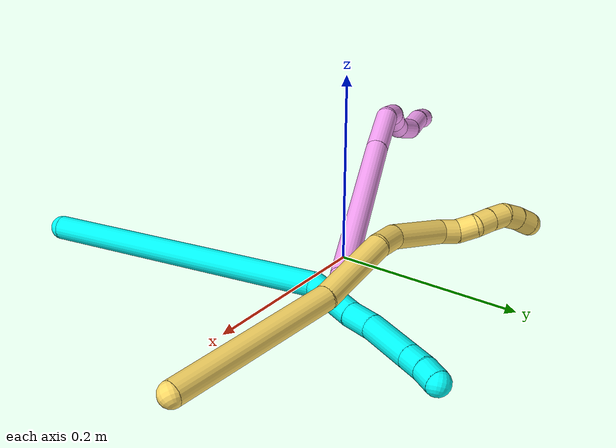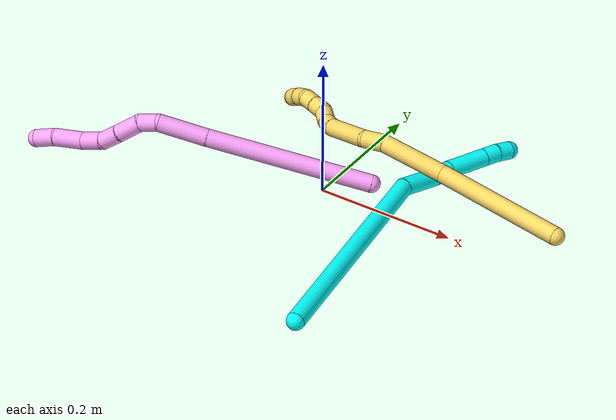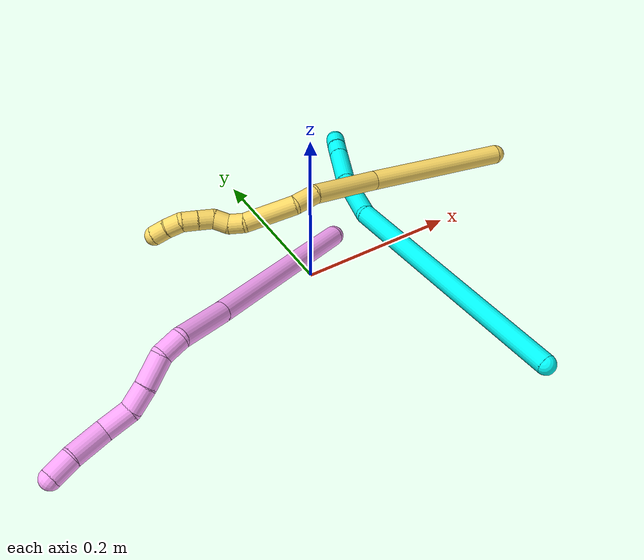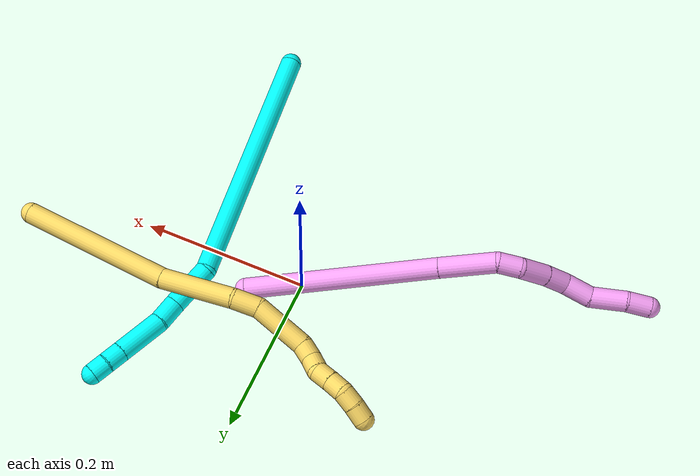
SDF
<sdf version="1.7">
 <world name="default">
  <model name="3">
   <static>0</static>
   <link name="3">
    <collision name="collision-cylinder-e_1_1_4">
     <pose>0.044024 0.150426 0.010958 -1.49808 0.283998 -0.264301</pose>
     <geometry><cylinder><radius>0.0125</radius><length>0.314236</length></cylinder></geometry>
     <surface>
      <friction><ode><mu>1.16</mu><mu2>1.16</mu2><slip1>0</slip1><slip2>0</slip2></ode></friction>
      <contact><ode><kp>1e+06</kp><kd>1</kd><max_vel>0</max_vel><min_depth>0.001</min_depth></ode></contact>
     </surface>
    </collision>
    <visual name="visual-cylinder-e_1_1_4">
     <pose>0.044024 0.150426 0.010958 -1.49808 0.283998 -0.264301</pose>
     <geometry><cylinder><radius>0.0125</radius><length>0.314236</length></cylinder></geometry>
     <material><ambient>0.003922 1 0.996078 1</ambient></material>
    </visual>
    <collision name="collision-cylinder-e_2_4_5">
     <pose>0.089512 0.325736 0.034073 -1.11638 0.052827 -0.032992</pose>
     <geometry><cylinder><radius>0.0125</radius><length>0.055469</length></cylinder></geometry>
     <surface>
      <friction><ode><mu>1.16</mu><mu2>1.16</mu2><slip1>0</slip1><slip2>0</slip2></ode></friction>
      <contact><ode><kp>1e+06</kp><kd>1</kd><max_vel>0</max_vel><min_depth>0.001</min_depth></ode></contact>
     </surface>
    </collision>
    <visual name="visual-cylinder-e_2_4_5">
     <pose>0.089512 0.325736 0.034073 -1.11638 0.052827 -0.032992</pose>
     <geometry><cylinder><radius>0.0125</radius><length>0.055469</length></cylinder></geometry>
     <material><ambient>0.003922 1 0.996078 1</ambient></material>
    </visual>
    <collision name="collision-cylinder-e_3_5_6">
     <pose>0.091685 0.364278 0.050867 -1.24347 0.049099 -0.035185</pose>
     <geometry><cylinder><radius>0.0125</radius><length>0.028879</length></cylinder></geometry>
     <surface>
      <friction><ode><mu>1.16</mu><mu2>1.16</mu2><slip1>0</slip1><slip2>0</slip2></ode></friction>
      <contact><ode><kp>1e+06</kp><kd>1</kd><max_vel>0</max_vel><min_depth>0.001</min_depth></ode></contact>
     </surface>
    </collision>
    <visual name="visual-cylinder-e_3_5_6">
     <pose>0.091685 0.364278 0.050867 -1.24347 0.049099 -0.035185</pose>
     <geometry><cylinder><radius>0.0125</radius><length>0.028879</length></cylinder></geometry>
     <material><ambient>0.003922 1 0.996078 1</ambient></material>
    </visual>
    <collision name="collision-cylinder-e_4_6_7">
     <pose>0.088786 0.404669 0.067197 -1.15848 -0.123019 0.080523</pose>
     <geometry><cylinder><radius>0.0125</radius><length>0.058805</length></cylinder></geometry>
     <surface>
      <friction><ode><mu>1.16</mu><mu2>1.16</mu2><slip1>0</slip1><slip2>0</slip2></ode></friction>
      <contact><ode><kp>1e+06</kp><kd>1</kd><max_vel>0</max_vel><min_depth>0.001</min_depth></ode></contact>
     </surface>
    </collision>
    <visual name="visual-cylinder-e_4_6_7">
     <pose>0.088786 0.404669 0.067197 -1.15848 -0.123019 0.080523</pose>
     <geometry><cylinder><radius>0.0125</radius><length>0.058805</length></cylinder></geometry>
     <material><ambient>0.003922 1 0.996078 1</ambient></material>
    </visual>
    <collision name="collision-cylinder-e_5_7_8">
     <pose>0.083814 0.441418 0.08326 -1.15937 -0.124151 0.081344</pose>
     <geometry><cylinder><radius>0.0125</radius><length>0.022021</length></cylinder></geometry>
     <surface>
      <friction><ode><mu>1.16</mu><mu2>1.16</mu2><slip1>0</slip1><slip2>0</slip2></ode></friction>
      <contact><ode><kp>1e+06</kp><kd>1</kd><max_vel>0</max_vel><min_depth>0.001</min_depth></ode></contact>
     </surface>
    </collision>
    <visual name="visual-cylinder-e_5_7_8">
     <pose>0.083814 0.441418 0.08326 -1.15937 -0.124151 0.081344</pose>
     <geometry><cylinder><radius>0.0125</radius><length>0.022021</length></cylinder></geometry>
     <material><ambient>0.003922 1 0.996078 1</ambient></material>
    </visual>
    <collision name="collision-cylinder-e_6_8_2">
     <pose>0.081372 0.460269 0.092799 -1.04147 -0.105033 0.060278</pose>
     <geometry><cylinder><radius>0.0125</radius><length>0.02059</length></cylinder></geometry>
     <surface>
      <friction><ode><mu>1.16</mu><mu2>1.16</mu2><slip1>0</slip1><slip2>0</slip2></ode></friction>
      <contact><ode><kp>1e+06</kp><kd>1</kd><max_vel>0</max_vel><min_depth>0.001</min_depth></ode></contact>
     </surface>
    </collision>
    <visual name="visual-cylinder-e_6_8_2">
     <pose>0.081372 0.460269 0.092799 -1.04147 -0.105033 0.060278</pose>
     <geometry><cylinder><radius>0.0125</radius><length>0.02059</length></cylinder></geometry>
     <material><ambient>0.003922 1 0.996078 1</ambient></material>
    </visual>
    <collision name="collision-sphere-2">
     <pose>0.080292 0.469106 0.097969 0 -0 0</pose>
     <geometry><sphere><radius>0.0125</radius></sphere></geometry>
     <surface>
      <friction><ode><mu>1.16</mu><mu2>1.16</mu2><slip1>0</slip1><slip2>0</slip2></ode></friction>
      <contact><ode><kp>1e+06</kp><kd>1</kd><max_vel>0</max_vel><min_depth>0.001</min_depth></ode></contact>
     </surface>
    </collision>
    <visual name="visual-sphere-2">
     <pose>0.080292 0.469106 0.097969 0 -0 0</pose>
     <geometry><sphere><radius>0.0125</radius></sphere></geometry>
     <material><ambient>0.003922 1 0.996078 1</ambient></material>
    </visual>
    <collision name="collision-sphere-4">
     <pose>0.088047 0.300851 0.021916 0 -0 0</pose>
     <geometry><sphere><radius>0.0125</radius></sphere></geometry>
     <surface>
      <friction><ode><mu>1.16</mu><mu2>1.16</mu2><slip1>0</slip1><slip2>0</slip2></ode></friction>
      <contact><ode><kp>1e+06</kp><kd>1</kd><max_vel>0</max_vel><min_depth>0.001</min_depth></ode></contact>
     </surface>
    </collision>
    <visual name="visual-sphere-4">
     <pose>0.088047 0.300851 0.021916 0 -0 0</pose>
     <geometry><sphere><radius>0.0125</radius></sphere></geometry>
     <material><ambient>0.003922 1 0.996078 1</ambient></material>
    </visual>
    <collision name="collision-sphere-1">
     <geometry><sphere><radius>0.0125</radius></sphere></geometry>
     <surface>
      <friction><ode><mu>1.16</mu><mu2>1.16</mu2><slip1>0</slip1><slip2>0</slip2></ode></friction>
      <contact><ode><kp>1e+06</kp><kd>1</kd><max_vel>0</max_vel><min_depth>0.001</min_depth></ode></contact>
     </surface>
    </collision>
    <visual name="visual-sphere-1">
     <geometry><sphere><radius>0.0125</radius></sphere></geometry>
     <material><ambient>0.003922 1 0.996078 1</ambient></material>
    </visual>
    <collision name="collision-sphere-8">
     <pose>0.082451 0.451432 0.087629 0 -0 0</pose>
     <geometry><sphere><radius>0.0125</radius></sphere></geometry>
     <surface>
      <friction><ode><mu>1.16</mu><mu2>1.16</mu2><slip1>0</slip1><slip2>0</slip2></ode></friction>
      <contact><ode><kp>1e+06</kp><kd>1</kd><max_vel>0</max_vel><min_depth>0.001</min_depth></ode></contact>
     </surface>
    </collision>
    <visual name="visual-sphere-8">
     <pose>0.082451 0.451432 0.087629 0 -0 0</pose>
     <geometry><sphere><radius>0.0125</radius></sphere></geometry>
     <material><ambient>0.003922 1 0.996078 1</ambient></material>
    </visual>
    <collision name="collision-sphere-5">
     <pose>0.090976 0.350621 0.04623 0 -0 0</pose>
     <geometry><sphere><radius>0.0125</radius></sphere></geometry>
     <surface>
      <friction><ode><mu>1.16</mu><mu2>1.16</mu2><slip1>0</slip1><slip2>0</slip2></ode></friction>
      <contact><ode><kp>1e+06</kp><kd>1</kd><max_vel>0</max_vel><min_depth>0.001</min_depth></ode></contact>
     </surface>
    </collision>
    <visual name="visual-sphere-5">
     <pose>0.090976 0.350621 0.04623 0 -0 0</pose>
     <geometry><sphere><radius>0.0125</radius></sphere></geometry>
     <material><ambient>0.003922 1 0.996078 1</ambient></material>
    </visual>
    <collision name="collision-sphere-6">
     <pose>0.092394 0.377934 0.055504 0 -0 0</pose>
     <geometry><sphere><radius>0.0125</radius></sphere></geometry>
     <surface>
      <friction><ode><mu>1.16</mu><mu2>1.16</mu2><slip1>0</slip1><slip2>0</slip2></ode></friction>
      <contact><ode><kp>1e+06</kp><kd>1</kd><max_vel>0</max_vel><min_depth>0.001</min_depth></ode></contact>
     </surface>
    </collision>
    <visual name="visual-sphere-6">
     <pose>0.092394 0.377934 0.055504 0 -0 0</pose>
     <geometry><sphere><radius>0.0125</radius></sphere></geometry>
     <material><ambient>0.003922 1 0.996078 1</ambient></material>
    </visual>
    <collision name="collision-sphere-7">
     <pose>0.085178 0.431404 0.07889 0 -0 0</pose>
     <geometry><sphere><radius>0.0125</radius></sphere></geometry>
     <surface>
      <friction><ode><mu>1.16</mu><mu2>1.16</mu2><slip1>0</slip1><slip2>0</slip2></ode></friction>
      <contact><ode><kp>1e+06</kp><kd>1</kd><max_vel>0</max_vel><min_depth>0.001</min_depth></ode></contact>
     </surface>
    </collision>
    <visual name="visual-sphere-7">
     <pose>0.085178 0.431404 0.07889 0 -0 0</pose>
     <geometry><sphere><radius>0.0125</radius></sphere></geometry>
     <material><ambient>0.003922 1 0.996078 1</ambient></material>
    </visual>
    <inertial>
     <pose>0.060378 0.237703 0.028996 0 -0 0</pose>
     <mass>0.5</mass>
     <inertia>
      <ixx>0.001805</ixx>
      <ixy>0</ixy>
      <ixz>0</ixz>
      <iyy>-0.000224</iyy>
      <iyz>0</iyz>
      <izz>-0.003244</izz>
     </inertia>
    </inertial>
   </link>
   <pose>0.139859 -0.273639 0.012015 2.82579 0.578745 2.87908</pose>
  </model>
  <model name="4">
   <static>0</static>
   <link name="4">
    <collision name="collision-cylinder-e_1_1_4">
     <pose>-0.113635 -0.020309 -0.01254 2.12395 -1.36376 -1.93749</pose>
     <geometry><cylinder><radius>0.0125</radius><length>0.23223</length></cylinder></geometry>
     <surface>
      <friction><ode><mu>1.16</mu><mu2>1.16</mu2><slip1>0</slip1><slip2>0</slip2></ode></friction>
      <contact><ode><kp>1e+06</kp><kd>1</kd><max_vel>0</max_vel><min_depth>0.001</min_depth></ode></contact>
     </surface>
    </collision>
    <visual name="visual-cylinder-e_1_1_4">
     <pose>-0.113635 -0.020309 -0.01254 2.12395 -1.36376 -1.93749</pose>
     <geometry><cylinder><radius>0.0125</radius><length>0.23223</length></cylinder></geometry>
     <material><ambient>1 0.65098 0.996078 1</ambient></material>
    </visual>
    <collision name="collision-cylinder-e_2_4_5">
     <pose>-0.26098 -0.046484 -0.029818 2.25024 -1.35075 -2.06607</pose>
     <geometry><cylinder><radius>0.0125</radius><length>0.069084</length></cylinder></geometry>
     <surface>
      <friction><ode><mu>1.16</mu><mu2>1.16</mu2><slip1>0</slip1><slip2>0</slip2></ode></friction>
      <contact><ode><kp>1e+06</kp><kd>1</kd><max_vel>0</max_vel><min_depth>0.001</min_depth></ode></contact>
     </surface>
    </collision>
    <visual name="visual-cylinder-e_2_4_5">
     <pose>-0.26098 -0.046484 -0.029818 2.25024 -1.35075 -2.06607</pose>
     <geometry><cylinder><radius>0.0125</radius><length>0.069084</length></cylinder></geometry>
     <material><ambient>1 0.65098 0.996078 1</ambient></material>
    </visual>
    <collision name="collision-cylinder-e_3_5_6">
     <pose>-0.305757 -0.060364 -0.035502 1.6883 -0.940772 -1.03916</pose>
     <geometry><cylinder><radius>0.0125</radius><length>0.027397</length></cylinder></geometry>
     <surface>
      <friction><ode><mu>1.16</mu><mu2>1.16</mu2><slip1>0</slip1><slip2>0</slip2></ode></friction>
      <contact><ode><kp>1e+06</kp><kd>1</kd><max_vel>0</max_vel><min_depth>0.001</min_depth></ode></contact>
     </surface>
    </collision>
    <visual name="visual-cylinder-e_3_5_6">
     <pose>-0.305757 -0.060364 -0.035502 1.6883 -0.940772 -1.03916</pose>
     <geometry><cylinder><radius>0.0125</radius><length>0.027397</length></cylinder></geometry>
     <material><ambient>1 0.65098 0.996078 1</ambient></material>
    </visual>
    <collision name="collision-cylinder-e_4_6_7">
     <pose>-0.327809 -0.082191 -0.031922 1.25419 -0.647093 -0.476768</pose>
     <geometry><cylinder><radius>0.0125</radius><length>0.036434</length></cylinder></geometry>
     <surface>
      <friction><ode><mu>1.16</mu><mu2>1.16</mu2><slip1>0</slip1><slip2>0</slip2></ode></friction>
      <contact><ode><kp>1e+06</kp><kd>1</kd><max_vel>0</max_vel><min_depth>0.001</min_depth></ode></contact>
     </surface>
    </collision>
    <visual name="visual-cylinder-e_4_6_7">
     <pose>-0.327809 -0.082191 -0.031922 1.25419 -0.647093 -0.476768</pose>
     <geometry><cylinder><radius>0.0125</radius><length>0.036434</length></cylinder></geometry>
     <material><ambient>1 0.65098 0.996078 1</ambient></material>
    </visual>
    <collision name="collision-cylinder-e_5_7_8">
     <pose>-0.347004 -0.107556 -0.02508 1.37281 -0.608682 -0.503757</pose>
     <geometry><cylinder><radius>0.0125</radius><length>0.028726</length></cylinder></geometry>
     <surface>
      <friction><ode><mu>1.16</mu><mu2>1.16</mu2><slip1>0</slip1><slip2>0</slip2></ode></friction>
      <contact><ode><kp>1e+06</kp><kd>1</kd><max_vel>0</max_vel><min_depth>0.001</min_depth></ode></contact>
     </surface>
    </collision>
    <visual name="visual-cylinder-e_5_7_8">
     <pose>-0.347004 -0.107556 -0.02508 1.37281 -0.608682 -0.503757</pose>
     <geometry><cylinder><radius>0.0125</radius><length>0.028726</length></cylinder></geometry>
     <material><ambient>1 0.65098 0.996078 1</ambient></material>
    </visual>
    <collision name="collision-cylinder-e_6_8_9">
     <pose>-0.366343 -0.131679 -0.026126 1.83232 -0.707462 -0.896816</pose>
     <geometry><cylinder><radius>0.0125</radius><length>0.034242</length></cylinder></geometry>
     <surface>
      <friction><ode><mu>1.16</mu><mu2>1.16</mu2><slip1>0</slip1><slip2>0</slip2></ode></friction>
      <contact><ode><kp>1e+06</kp><kd>1</kd><max_vel>0</max_vel><min_depth>0.001</min_depth></ode></contact>
     </surface>
    </collision>
    <visual name="visual-cylinder-e_6_8_9">
     <pose>-0.366343 -0.131679 -0.026126 1.83232 -0.707462 -0.896816</pose>
     <geometry><cylinder><radius>0.0125</radius><length>0.034242</length></cylinder></geometry>
     <material><ambient>1 0.65098 0.996078 1</ambient></material>
    </visual>
    <collision name="collision-cylinder-e_7_9_10">
     <pose>-0.39671 -0.153834 -0.031798 1.807 -1.09725 -1.3196</pose>
     <geometry><cylinder><radius>0.0125</radius><length>0.043237</length></cylinder></geometry>
     <surface>
      <friction><ode><mu>1.16</mu><mu2>1.16</mu2><slip1>0</slip1><slip2>0</slip2></ode></friction>
      <contact><ode><kp>1e+06</kp><kd>1</kd><max_vel>0</max_vel><min_depth>0.001</min_depth></ode></contact>
     </surface>
    </collision>
    <visual name="visual-cylinder-e_7_9_10">
     <pose>-0.39671 -0.153834 -0.031798 1.807 -1.09725 -1.3196</pose>
     <geometry><cylinder><radius>0.0125</radius><length>0.043237</length></cylinder></geometry>
     <material><ambient>1 0.65098 0.996078 1</ambient></material>
    </visual>
    <collision name="collision-cylinder-e_8_10_2">
     <pose>-0.427196 -0.172281 -0.03453 1.61878 -0.902879 -0.941121</pose>
     <geometry><cylinder><radius>0.0125</radius><length>0.02865</length></cylinder></geometry>
     <surface>
      <friction><ode><mu>1.16</mu><mu2>1.16</mu2><slip1>0</slip1><slip2>0</slip2></ode></friction>
      <contact><ode><kp>1e+06</kp><kd>1</kd><max_vel>0</max_vel><min_depth>0.001</min_depth></ode></contact>
     </surface>
    </collision>
    <visual name="visual-cylinder-e_8_10_2">
     <pose>-0.427196 -0.172281 -0.03453 1.61878 -0.902879 -0.941121</pose>
     <geometry><cylinder><radius>0.0125</radius><length>0.02865</length></cylinder></geometry>
     <material><ambient>1 0.65098 0.996078 1</ambient></material>
    </visual>
    <collision name="collision-sphere-2">
     <pose>-0.438443 -0.181143 -0.034956 0 -0 0</pose>
     <geometry><sphere><radius>0.0125</radius></sphere></geometry>
     <surface>
      <friction><ode><mu>1.16</mu><mu2>1.16</mu2><slip1>0</slip1><slip2>0</slip2></ode></friction>
      <contact><ode><kp>1e+06</kp><kd>1</kd><max_vel>0</max_vel><min_depth>0.001</min_depth></ode></contact>
     </surface>
    </collision>
    <visual name="visual-sphere-2">
     <pose>-0.438443 -0.181143 -0.034956 0 -0 0</pose>
     <geometry><sphere><radius>0.0125</radius></sphere></geometry>
     <material><ambient>1 0.65098 0.996078 1</ambient></material>
    </visual>
    <collision name="collision-sphere-10">
     <pose>-0.415949 -0.16342 -0.034105 0 -0 0</pose>
     <geometry><sphere><radius>0.0125</radius></sphere></geometry>
     <surface>
      <friction><ode><mu>1.16</mu><mu2>1.16</mu2><slip1>0</slip1><slip2>0</slip2></ode></friction>
      <contact><ode><kp>1e+06</kp><kd>1</kd><max_vel>0</max_vel><min_depth>0.001</min_depth></ode></contact>
     </surface>
    </collision>
    <visual name="visual-sphere-10">
     <pose>-0.415949 -0.16342 -0.034105 0 -0 0</pose>
     <geometry><sphere><radius>0.0125</radius></sphere></geometry>
     <material><ambient>1 0.65098 0.996078 1</ambient></material>
    </visual>
    <collision name="collision-sphere-9">
     <pose>-0.37747 -0.144249 -0.02949 0 -0 0</pose>
     <geometry><sphere><radius>0.0125</radius></sphere></geometry>
     <surface>
      <friction><ode><mu>1.16</mu><mu2>1.16</mu2><slip1>0</slip1><slip2>0</slip2></ode></friction>
      <contact><ode><kp>1e+06</kp><kd>1</kd><max_vel>0</max_vel><min_depth>0.001</min_depth></ode></contact>
     </surface>
    </collision>
    <visual name="visual-sphere-9">
     <pose>-0.37747 -0.144249 -0.02949 0 -0 0</pose>
     <geometry><sphere><radius>0.0125</radius></sphere></geometry>
     <material><ambient>1 0.65098 0.996078 1</ambient></material>
    </visual>
    <collision name="collision-sphere-4">
     <pose>-0.227271 -0.040619 -0.02508 0 -0 0</pose>
     <geometry><sphere><radius>0.0125</radius></sphere></geometry>
     <surface>
      <friction><ode><mu>1.16</mu><mu2>1.16</mu2><slip1>0</slip1><slip2>0</slip2></ode></friction>
      <contact><ode><kp>1e+06</kp><kd>1</kd><max_vel>0</max_vel><min_depth>0.001</min_depth></ode></contact>
     </surface>
    </collision>
    <visual name="visual-sphere-4">
     <pose>-0.227271 -0.040619 -0.02508 0 -0 0</pose>
     <geometry><sphere><radius>0.0125</radius></sphere></geometry>
     <material><ambient>1 0.65098 0.996078 1</ambient></material>
    </visual>
    <collision name="collision-sphere-1">
     <geometry><sphere><radius>0.0125</radius></sphere></geometry>
     <surface>
      <friction><ode><mu>1.16</mu><mu2>1.16</mu2><slip1>0</slip1><slip2>0</slip2></ode></friction>
      <contact><ode><kp>1e+06</kp><kd>1</kd><max_vel>0</max_vel><min_depth>0.001</min_depth></ode></contact>
     </surface>
    </collision>
    <visual name="visual-sphere-1">
     <geometry><sphere><radius>0.0125</radius></sphere></geometry>
     <material><ambient>1 0.65098 0.996078 1</ambient></material>
    </visual>
    <collision name="collision-sphere-8">
     <pose>-0.355216 -0.119109 -0.022762 0 -0 0</pose>
     <geometry><sphere><radius>0.0125</radius></sphere></geometry>
     <surface>
      <friction><ode><mu>1.16</mu><mu2>1.16</mu2><slip1>0</slip1><slip2>0</slip2></ode></friction>
      <contact><ode><kp>1e+06</kp><kd>1</kd><max_vel>0</max_vel><min_depth>0.001</min_depth></ode></contact>
     </surface>
    </collision>
    <visual name="visual-sphere-8">
     <pose>-0.355216 -0.119109 -0.022762 0 -0 0</pose>
     <geometry><sphere><radius>0.0125</radius></sphere></geometry>
     <material><ambient>1 0.65098 0.996078 1</ambient></material>
    </visual>
    <collision name="collision-sphere-5">
     <pose>-0.294689 -0.052349 -0.034555 0 -0 0</pose>
     <geometry><sphere><radius>0.0125</radius></sphere></geometry>
     <surface>
      <friction><ode><mu>1.16</mu><mu2>1.16</mu2><slip1>0</slip1><slip2>0</slip2></ode></friction>
      <contact><ode><kp>1e+06</kp><kd>1</kd><max_vel>0</max_vel><min_depth>0.001</min_depth></ode></contact>
     </surface>
    </collision>
    <visual name="visual-sphere-5">
     <pose>-0.294689 -0.052349 -0.034555 0 -0 0</pose>
     <geometry><sphere><radius>0.0125</radius></sphere></geometry>
     <material><ambient>1 0.65098 0.996078 1</ambient></material>
    </visual>
    <collision name="collision-sphere-6">
     <pose>-0.316826 -0.068379 -0.036448 0 -0 0</pose>
     <geometry><sphere><radius>0.0125</radius></sphere></geometry>
     <surface>
      <friction><ode><mu>1.16</mu><mu2>1.16</mu2><slip1>0</slip1><slip2>0</slip2></ode></friction>
      <contact><ode><kp>1e+06</kp><kd>1</kd><max_vel>0</max_vel><min_depth>0.001</min_depth></ode></contact>
     </surface>
    </collision>
    <visual name="visual-sphere-6">
     <pose>-0.316826 -0.068379 -0.036448 0 -0 0</pose>
     <geometry><sphere><radius>0.0125</radius></sphere></geometry>
     <material><ambient>1 0.65098 0.996078 1</ambient></material>
    </visual>
    <collision name="collision-sphere-7">
     <pose>-0.338791 -0.096003 -0.027397 0 -0 0</pose>
     <geometry><sphere><radius>0.0125</radius></sphere></geometry>
     <surface>
      <friction><ode><mu>1.16</mu><mu2>1.16</mu2><slip1>0</slip1><slip2>0</slip2></ode></friction>
      <contact><ode><kp>1e+06</kp><kd>1</kd><max_vel>0</max_vel><min_depth>0.001</min_depth></ode></contact>
     </surface>
    </collision>
    <visual name="visual-sphere-7">
     <pose>-0.338791 -0.096003 -0.027397 0 -0 0</pose>
     <geometry><sphere><radius>0.0125</radius></sphere></geometry>
     <material><ambient>1 0.65098 0.996078 1</ambient></material>
    </visual>
    <inertial>
     <pose>-0.233287 -0.063524 -0.022174 0 -0 0</pose>
     <mass>0.5</mass>
     <inertia>
      <ixx>-0.000324</ixx>
      <ixy>0</ixy>
      <ixz>0</ixz>
      <iyy>0.000827</iyy>
      <iyz>0</iyz>
      <izz>0.001284</izz>
     </inertia>
    </inertial>
   </link>
   <pose>0.056323 0.036171 0.012209 2.03516 0.329547 0.603828</pose>
  </model>
  <model name="5">
   <static>0</static>
   <link name="5">
    <collision name="collision-cylinder-e_1_1_4">
     <pose>-0.077607 -0.046594 0.026181 1.05886 -0.967711 -0.596662</pose>
     <geometry><cylinder><radius>0.0125</radius><length>0.188459</length></cylinder></geometry>
     <surface>
      <friction><ode><mu>1.16</mu><mu2>1.16</mu2><slip1>0</slip1><slip2>0</slip2></ode></friction>
      <contact><ode><kp>1e+06</kp><kd>1</kd><max_vel>0</max_vel><min_depth>0.001</min_depth></ode></contact>
     </surface>
    </collision>
    <visual name="visual-cylinder-e_1_1_4">
     <pose>-0.077607 -0.046594 0.026181 1.05886 -0.967711 -0.596662</pose>
     <geometry><cylinder><radius>0.0125</radius><length>0.188459</length></cylinder></geometry>
     <material><ambient>1 0.858824 0.4 1</ambient></material>
    </visual>
    <collision name="collision-cylinder-e_2_4_5">
     <pose>-0.190712 -0.115017 0.072735 0.819915 -0.87148 -0.399279</pose>
     <geometry><cylinder><radius>0.0125</radius><length>0.092772</length></cylinder></geometry>
     <surface>
      <friction><ode><mu>1.16</mu><mu2>1.16</mu2><slip1>0</slip1><slip2>0</slip2></ode></friction>
      <contact><ode><kp>1e+06</kp><kd>1</kd><max_vel>0</max_vel><min_depth>0.001</min_depth></ode></contact>
     </surface>
    </collision>
    <visual name="visual-cylinder-e_2_4_5">
     <pose>-0.190712 -0.115017 0.072735 0.819915 -0.87148 -0.399279</pose>
     <geometry><cylinder><radius>0.0125</radius><length>0.092772</length></cylinder></geometry>
     <material><ambient>1 0.858824 0.4 1</ambient></material>
    </visual>
    <collision name="collision-cylinder-e_3_5_6">
     <pose>-0.236616 -0.147687 0.098135 1.13649 -0.716425 -0.469252</pose>
     <geometry><cylinder><radius>0.0125</radius><length>0.031692</length></cylinder></geometry>
     <surface>
      <friction><ode><mu>1.16</mu><mu2>1.16</mu2><slip1>0</slip1><slip2>0</slip2></ode></friction>
      <contact><ode><kp>1e+06</kp><kd>1</kd><max_vel>0</max_vel><min_depth>0.001</min_depth></ode></contact>
     </surface>
    </collision>
    <visual name="visual-cylinder-e_3_5_6">
     <pose>-0.236616 -0.147687 0.098135 1.13649 -0.716425 -0.469252</pose>
     <geometry><cylinder><radius>0.0125</radius><length>0.031692</length></cylinder></geometry>
     <material><ambient>1 0.858824 0.4 1</ambient></material>
    </visual>
    <collision name="collision-cylinder-e_4_6_7">
     <pose>-0.272936 -0.179357 0.103038 1.57685 -0.893734 -0.898463</pose>
     <geometry><cylinder><radius>0.0125</radius><length>0.066494</length></cylinder></geometry>
     <surface>
      <friction><ode><mu>1.16</mu><mu2>1.16</mu2><slip1>0</slip1><slip2>0</slip2></ode></friction>
      <contact><ode><kp>1e+06</kp><kd>1</kd><max_vel>0</max_vel><min_depth>0.001</min_depth></ode></contact>
     </surface>
    </collision>
    <visual name="visual-cylinder-e_4_6_7">
     <pose>-0.272936 -0.179357 0.103038 1.57685 -0.893734 -0.898463</pose>
     <geometry><cylinder><radius>0.0125</radius><length>0.066494</length></cylinder></geometry>
     <material><ambient>1 0.858824 0.4 1</ambient></material>
    </visual>
    <collision name="collision-cylinder-e_5_7_8">
     <pose>-0.307829 -0.204264 0.10064 2.07897 -1.09146 -1.60354</pose>
     <geometry><cylinder><radius>0.0125</radius><length>0.020242</length></cylinder></geometry>
     <surface>
      <friction><ode><mu>1.16</mu><mu2>1.16</mu2><slip1>0</slip1><slip2>0</slip2></ode></friction>
      <contact><ode><kp>1e+06</kp><kd>1</kd><max_vel>0</max_vel><min_depth>0.001</min_depth></ode></contact>
     </surface>
    </collision>
    <visual name="visual-cylinder-e_5_7_8">
     <pose>-0.307829 -0.204264 0.10064 2.07897 -1.09146 -1.60354</pose>
     <geometry><cylinder><radius>0.0125</radius><length>0.020242</length></cylinder></geometry>
     <material><ambient>1 0.858824 0.4 1</ambient></material>
    </visual>
    <collision name="collision-cylinder-e_6_8_9">
     <pose>-0.326888 -0.20836 0.097172 3.12684 -1.45256 -3.12499</pose>
     <geometry><cylinder><radius>0.0125</radius><length>0.0203</length></cylinder></geometry>
     <surface>
      <friction><ode><mu>1.16</mu><mu2>1.16</mu2><slip1>0</slip1><slip2>0</slip2></ode></friction>
      <contact><ode><kp>1e+06</kp><kd>1</kd><max_vel>0</max_vel><min_depth>0.001</min_depth></ode></contact>
     </surface>
    </collision>
    <visual name="visual-cylinder-e_6_8_9">
     <pose>-0.326888 -0.20836 0.097172 3.12684 -1.45256 -3.12499</pose>
     <geometry><cylinder><radius>0.0125</radius><length>0.0203</length></cylinder></geometry>
     <material><ambient>1 0.858824 0.4 1</ambient></material>
    </visual>
    <collision name="collision-cylinder-e_7_9_10">
     <pose>-0.346002 -0.212493 0.097178 1.28645 -1.12765 -0.885173</pose>
     <geometry><cylinder><radius>0.0125</radius><length>0.020002</length></cylinder></geometry>
     <surface>
      <friction><ode><mu>1.16</mu><mu2>1.16</mu2><slip1>0</slip1><slip2>0</slip2></ode></friction>
      <contact><ode><kp>1e+06</kp><kd>1</kd><max_vel>0</max_vel><min_depth>0.001</min_depth></ode></contact>
     </surface>
    </collision>
    <visual name="visual-cylinder-e_7_9_10">
     <pose>-0.346002 -0.212493 0.097178 1.28645 -1.12765 -0.885173</pose>
     <geometry><cylinder><radius>0.0125</radius><length>0.020002</length></cylinder></geometry>
     <material><ambient>1 0.858824 0.4 1</ambient></material>
    </visual>
    <collision name="collision-cylinder-e_8_10_11">
     <pose>-0.364068 -0.220872 0.099079 1.40852 -1.12467 -0.983163</pose>
     <geometry><cylinder><radius>0.0125</radius><length>0.020021</length></cylinder></geometry>
     <surface>
      <friction><ode><mu>1.16</mu><mu2>1.16</mu2><slip1>0</slip1><slip2>0</slip2></ode></friction>
      <contact><ode><kp>1e+06</kp><kd>1</kd><max_vel>0</max_vel><min_depth>0.001</min_depth></ode></contact>
     </surface>
    </collision>
    <visual name="visual-cylinder-e_8_10_11">
     <pose>-0.364068 -0.220872 0.099079 1.40852 -1.12467 -0.983163</pose>
     <geometry><cylinder><radius>0.0125</radius><length>0.020021</length></cylinder></geometry>
     <material><ambient>1 0.858824 0.4 1</ambient></material>
    </visual>
    <collision name="collision-cylinder-e_9_11_12">
     <pose>-0.380188 -0.231798 0.097458 1.90569 -0.787776 -1.05817</pose>
     <geometry><cylinder><radius>0.0125</radius><length>0.020004</length></cylinder></geometry>
     <surface>
      <friction><ode><mu>1.16</mu><mu2>1.16</mu2><slip1>0</slip1><slip2>0</slip2></ode></friction>
      <contact><ode><kp>1e+06</kp><kd>1</kd><max_vel>0</max_vel><min_depth>0.001</min_depth></ode></contact>
     </surface>
    </collision>
    <visual name="visual-cylinder-e_9_11_12">
     <pose>-0.380188 -0.231798 0.097458 1.90569 -0.787776 -1.05817</pose>
     <geometry><cylinder><radius>0.0125</radius><length>0.020004</length></cylinder></geometry>
     <material><ambient>1 0.858824 0.4 1</ambient></material>
    </visual>
    <collision name="collision-cylinder-e_10_12_2">
     <pose>-0.393457 -0.245603 0.091828 2.00493 -0.665625 -0.992248</pose>
     <geometry><cylinder><radius>0.0125</radius><length>0.020013</length></cylinder></geometry>
     <surface>
      <friction><ode><mu>1.16</mu><mu2>1.16</mu2><slip1>0</slip1><slip2>0</slip2></ode></friction>
      <contact><ode><kp>1e+06</kp><kd>1</kd><max_vel>0</max_vel><min_depth>0.001</min_depth></ode></contact>
     </surface>
    </collision>
    <visual name="visual-cylinder-e_10_12_2">
     <pose>-0.393457 -0.245603 0.091828 2.00493 -0.665625 -0.992248</pose>
     <geometry><cylinder><radius>0.0125</radius><length>0.020013</length></cylinder></geometry>
     <material><ambient>1 0.858824 0.4 1</ambient></material>
    </visual>
    <collision name="collision-sphere-2">
     <pose>-0.399637 -0.252743 0.088517 0 -0 0</pose>
     <geometry><sphere><radius>0.0125</radius></sphere></geometry>
     <surface>
      <friction><ode><mu>1.16</mu><mu2>1.16</mu2><slip1>0</slip1><slip2>0</slip2></ode></friction>
      <contact><ode><kp>1e+06</kp><kd>1</kd><max_vel>0</max_vel><min_depth>0.001</min_depth></ode></contact>
     </surface>
    </collision>
    <visual name="visual-sphere-2">
     <pose>-0.399637 -0.252743 0.088517 0 -0 0</pose>
     <geometry><sphere><radius>0.0125</radius></sphere></geometry>
     <material><ambient>1 0.858824 0.4 1</ambient></material>
    </visual>
    <collision name="collision-sphere-12">
     <pose>-0.387277 -0.238462 0.095139 0 -0 0</pose>
     <geometry><sphere><radius>0.0125</radius></sphere></geometry>
     <surface>
      <friction><ode><mu>1.16</mu><mu2>1.16</mu2><slip1>0</slip1><slip2>0</slip2></ode></friction>
      <contact><ode><kp>1e+06</kp><kd>1</kd><max_vel>0</max_vel><min_depth>0.001</min_depth></ode></contact>
     </surface>
    </collision>
    <visual name="visual-sphere-12">
     <pose>-0.387277 -0.238462 0.095139 0 -0 0</pose>
     <geometry><sphere><radius>0.0125</radius></sphere></geometry>
     <material><ambient>1 0.858824 0.4 1</ambient></material>
    </visual>
    <collision name="collision-sphere-11">
     <pose>-0.373099 -0.225135 0.099777 0 -0 0</pose>
     <geometry><sphere><radius>0.0125</radius></sphere></geometry>
     <surface>
      <friction><ode><mu>1.16</mu><mu2>1.16</mu2><slip1>0</slip1><slip2>0</slip2></ode></friction>
      <contact><ode><kp>1e+06</kp><kd>1</kd><max_vel>0</max_vel><min_depth>0.001</min_depth></ode></contact>
     </surface>
    </collision>
    <visual name="visual-sphere-11">
     <pose>-0.373099 -0.225135 0.099777 0 -0 0</pose>
     <geometry><sphere><radius>0.0125</radius></sphere></geometry>
     <material><ambient>1 0.858824 0.4 1</ambient></material>
    </visual>
    <collision name="collision-sphere-10">
     <pose>-0.355037 -0.21661 0.098381 0 -0 0</pose>
     <geometry><sphere><radius>0.0125</radius></sphere></geometry>
     <surface>
      <friction><ode><mu>1.16</mu><mu2>1.16</mu2><slip1>0</slip1><slip2>0</slip2></ode></friction>
      <contact><ode><kp>1e+06</kp><kd>1</kd><max_vel>0</max_vel><min_depth>0.001</min_depth></ode></contact>
     </surface>
    </collision>
    <visual name="visual-sphere-10">
     <pose>-0.355037 -0.21661 0.098381 0 -0 0</pose>
     <geometry><sphere><radius>0.0125</radius></sphere></geometry>
     <material><ambient>1 0.858824 0.4 1</ambient></material>
    </visual>
    <collision name="collision-sphere-9">
     <pose>-0.336967 -0.208377 0.095975 0 -0 0</pose>
     <geometry><sphere><radius>0.0125</radius></sphere></geometry>
     <surface>
      <friction><ode><mu>1.16</mu><mu2>1.16</mu2><slip1>0</slip1><slip2>0</slip2></ode></friction>
      <contact><ode><kp>1e+06</kp><kd>1</kd><max_vel>0</max_vel><min_depth>0.001</min_depth></ode></contact>
     </surface>
    </collision>
    <visual name="visual-sphere-9">
     <pose>-0.336967 -0.208377 0.095975 0 -0 0</pose>
     <geometry><sphere><radius>0.0125</radius></sphere></geometry>
     <material><ambient>1 0.858824 0.4 1</ambient></material>
    </visual>
    <collision name="collision-sphere-4">
     <pose>-0.155213 -0.093188 0.052363 0 -0 0</pose>
     <geometry><sphere><radius>0.0125</radius></sphere></geometry>
     <surface>
      <friction><ode><mu>1.16</mu><mu2>1.16</mu2><slip1>0</slip1><slip2>0</slip2></ode></friction>
      <contact><ode><kp>1e+06</kp><kd>1</kd><max_vel>0</max_vel><min_depth>0.001</min_depth></ode></contact>
     </surface>
    </collision>
    <visual name="visual-sphere-4">
     <pose>-0.155213 -0.093188 0.052363 0 -0 0</pose>
     <geometry><sphere><radius>0.0125</radius></sphere></geometry>
     <material><ambient>1 0.858824 0.4 1</ambient></material>
    </visual>
    <collision name="collision-sphere-1">
     <geometry><sphere><radius>0.0125</radius></sphere></geometry>
     <surface>
      <friction><ode><mu>1.16</mu><mu2>1.16</mu2><slip1>0</slip1><slip2>0</slip2></ode></friction>
      <contact><ode><kp>1e+06</kp><kd>1</kd><max_vel>0</max_vel><min_depth>0.001</min_depth></ode></contact>
     </surface>
    </collision>
    <visual name="visual-sphere-1">
     <geometry><sphere><radius>0.0125</radius></sphere></geometry>
     <material><ambient>1 0.858824 0.4 1</ambient></material>
    </visual>
    <collision name="collision-sphere-8">
     <pose>-0.316809 -0.208342 0.098369 0 -0 0</pose>
     <geometry><sphere><radius>0.0125</radius></sphere></geometry>
     <surface>
      <friction><ode><mu>1.16</mu><mu2>1.16</mu2><slip1>0</slip1><slip2>0</slip2></ode></friction>
      <contact><ode><kp>1e+06</kp><kd>1</kd><max_vel>0</max_vel><min_depth>0.001</min_depth></ode></contact>
     </surface>
    </collision>
    <visual name="visual-sphere-8">
     <pose>-0.316809 -0.208342 0.098369 0 -0 0</pose>
     <geometry><sphere><radius>0.0125</radius></sphere></geometry>
     <material><ambient>1 0.858824 0.4 1</ambient></material>
    </visual>
    <collision name="collision-sphere-5">
     <pose>-0.22621 -0.136846 0.093107 0 -0 0</pose>
     <geometry><sphere><radius>0.0125</radius></sphere></geometry>
     <surface>
      <friction><ode><mu>1.16</mu><mu2>1.16</mu2><slip1>0</slip1><slip2>0</slip2></ode></friction>
      <contact><ode><kp>1e+06</kp><kd>1</kd><max_vel>0</max_vel><min_depth>0.001</min_depth></ode></contact>
     </surface>
    </collision>
    <visual name="visual-sphere-5">
     <pose>-0.22621 -0.136846 0.093107 0 -0 0</pose>
     <geometry><sphere><radius>0.0125</radius></sphere></geometry>
     <material><ambient>1 0.858824 0.4 1</ambient></material>
    </visual>
    <collision name="collision-sphere-6">
     <pose>-0.247022 -0.158528 0.103164 0 -0 0</pose>
     <geometry><sphere><radius>0.0125</radius></sphere></geometry>
     <surface>
      <friction><ode><mu>1.16</mu><mu2>1.16</mu2><slip1>0</slip1><slip2>0</slip2></ode></friction>
      <contact><ode><kp>1e+06</kp><kd>1</kd><max_vel>0</max_vel><min_depth>0.001</min_depth></ode></contact>
     </surface>
    </collision>
    <visual name="visual-sphere-6">
     <pose>-0.247022 -0.158528 0.103164 0 -0 0</pose>
     <geometry><sphere><radius>0.0125</radius></sphere></geometry>
     <material><ambient>1 0.858824 0.4 1</ambient></material>
    </visual>
    <collision name="collision-sphere-7">
     <pose>-0.298849 -0.200186 0.102912 0 -0 0</pose>
     <geometry><sphere><radius>0.0125</radius></sphere></geometry>
     <surface>
      <friction><ode><mu>1.16</mu><mu2>1.16</mu2><slip1>0</slip1><slip2>0</slip2></ode></friction>
      <contact><ode><kp>1e+06</kp><kd>1</kd><max_vel>0</max_vel><min_depth>0.001</min_depth></ode></contact>
     </surface>
    </collision>
    <visual name="visual-sphere-7">
     <pose>-0.298849 -0.200186 0.102912 0 -0 0</pose>
     <geometry><sphere><radius>0.0125</radius></sphere></geometry>
     <material><ambient>1 0.858824 0.4 1</ambient></material>
    </visual>
    <inertial>
     <pose>-0.201044 -0.125294 0.066736 0 -0 0</pose>
     <mass>0.5</mass>
     <inertia>
      <ixx>7.5e-05</ixx>
      <ixy>0</ixy>
      <ixz>0</ixz>
      <iyy>0.000306</iyy>
      <iyz>0</iyz>
      <izz>0.000893</izz>
     </inertia>
    </inertial>
   </link>
   <pose>0.330193 0.05367 0.023841 0.869521 0.330065 -0.684023</pose>
  </model>
 </world>
</sdf>
